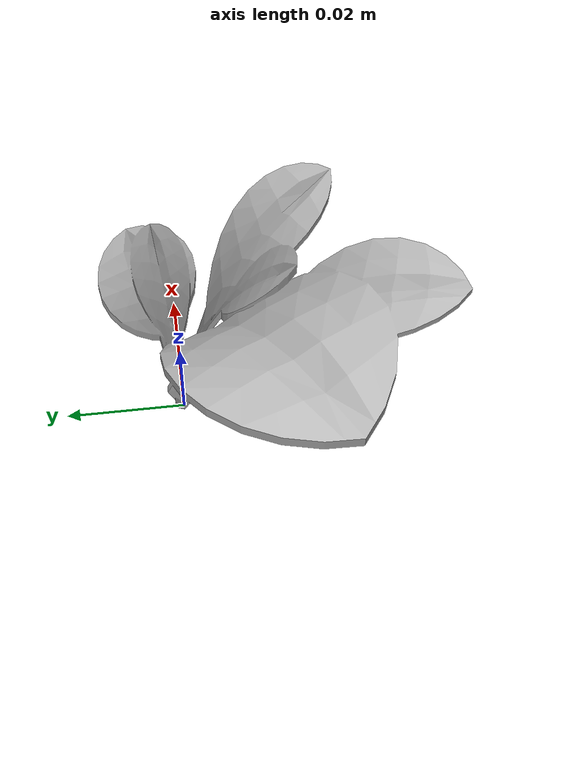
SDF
<sdf version="1.6">
  <model name="sugar_beet_14">
    <static>true</static>
    <link name="body">
      <visual name="visual">
        <geometry>
          <mesh>
            <uri>file:///sugar_beet_14/media/sugar_beet.dae</uri>
          </mesh>
        </geometry>
      </visual>
    </link>
  </model>
</sdf>
